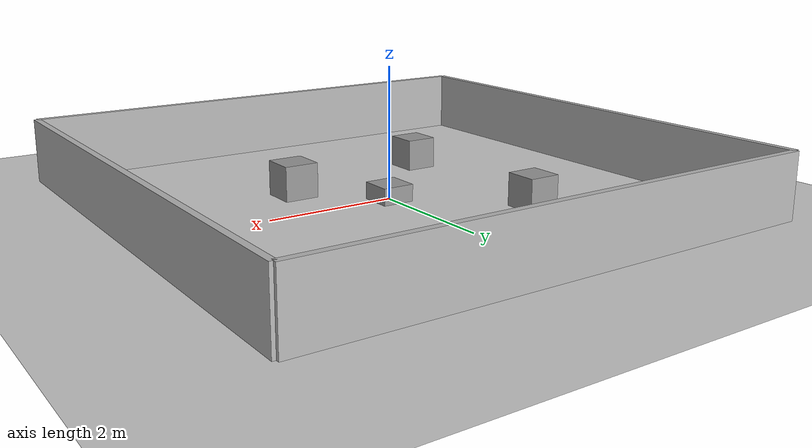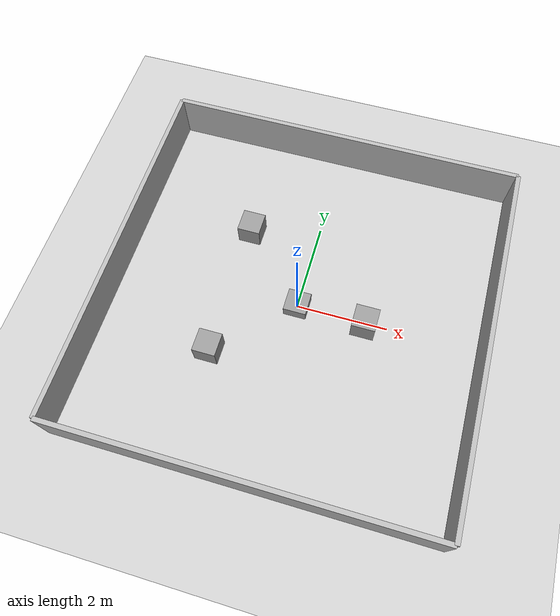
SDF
<sdf version="1.7">
 <world name="my_world">
  <physics name="1ms" type="ignored">
   <max_step_size>0.001</max_step_size>
   <real_time_factor>1.0</real_time_factor>
  </physics>
  <plugin filename="gz-sim-physics-system" name="gz::sim::systems::Physics"/>
  <plugin filename="gz-sim-user-commands-system" name="gz::sim::systems::UserCommands"/>
  <plugin filename="gz-sim-scene-broadcaster-system" name="gz::sim::systems::SceneBroadcaster"/>
  <plugin filename="gz-sim-imu-system" name="gz::sim::systems::Imu"/>
  <plugin filename="gz-sim-sensors-system" name="gz::sim::systems::Sensors">
   <render_engine>ogre2</render_engine>
  </plugin>
  <light name="sun" type="directional">
   <pose>0 0 10 0 -0 0</pose>
   <diffuse>0.8 0.8 0.8 1</diffuse>
   <specular>0.2 0.2 0.2 1</specular>
   <attenuation>
    <range>1000</range>
    <constant>0.9</constant>
    <linear>0.01</linear>
    <quadratic>0.001</quadratic>
   </attenuation>
   <direction>-0.5 0.1 -0.9</direction>
   <spot><inner_angle>0</inner_angle><outer_angle>0</outer_angle><falloff>0</falloff></spot>
  </light>
  <model name="ground_plane">
   <static>1</static>
   <link name="link">
    <collision name="collision">
     <geometry><plane><normal>0 0 1</normal><size>100 100</size></plane></geometry>
     <surface><friction><ode><mu>100</mu><mu2>50</mu2></ode></friction></surface>
    </collision>
    <visual name="visual">
     <cast_shadows>0</cast_shadows>
     <geometry><plane><normal>0 0 1</normal><size>100 100</size></plane></geometry>
     <material>
      <script><uri>file://media/materials/scripts/gazebo.material</uri><name>Gazebo/Grey</name></script>
     </material>
    </visual>
   </link>
  </model>
  <gravity>0 0 -9.8</gravity>
  <magnetic_field>6e-06 2.3e-05 -4.2e-05</magnetic_field>
  <atmosphere type="adiabatic"/>
  <physics type="ode">
   <max_step_size>0.001</max_step_size>
   <real_time_factor>1</real_time_factor>
   <real_time_update_rate>1000</real_time_update_rate>
  </physics>
  <scene><ambient>0.4 0.4 0.4 1</ambient><background>0.7 0.7 0.7 1</background><shadows>1</shadows></scene>
  <spherical_coordinates>
   <surface_model>EARTH_WGS84</surface_model>
   <latitude_deg>0</latitude_deg>
   <longitude_deg>0</longitude_deg>
   <elevation>0</elevation>
   <heading_deg>0</heading_deg>
  </spherical_coordinates>
  <model name="unit_box">
   <pose>1.51272 -0.181418 0.499995 0 1e-05 0</pose>
   <link name="link">
    <inertial>
     <mass>1</mass>
     <inertia>
      <ixx>0.166667</ixx>
      <ixy>0</ixy>
      <ixz>0</ixz>
      <iyy>0.166667</iyy>
      <iyz>0</iyz>
      <izz>0.166667</izz>
     </inertia>
    </inertial>
    <collision name="collision"><geometry><box><size>0.5 0.5 0.5</size></box></geometry></collision>
    <visual name="visual">
     <geometry><box><size>0.5 0.5 0.5</size></box></geometry>
     <material>
      <script><name>Gazebo/Grey</name><uri>file://media/materials/scripts/gazebo.material</uri></script>
     </material>
    </visual>
   </link>
  </model>
  <model name="wall_north">
   <static>1</static>
   <pose>0 4 0.5 0 0 0</pose>
   <link name="link">
    <collision name="collision"><geometry><box><size>8 0.1 1</size></box></geometry></collision>
    <visual name="visual"><geometry><box><size>8 0.1 1</size></box></geometry></visual>
   </link>
  </model>
  <model name="wall_south">
   <static>1</static>
   <pose>0 -4 0.5 0 0 0</pose>
   <link name="link">
    <collision name="collision"><geometry><box><size>8 0.1 1</size></box></geometry></collision>
    <visual name="visual"><geometry><box><size>8 0.1 1</size></box></geometry></visual>
   </link>
  </model>
  <model name="wall_east">
   <static>1</static>
   <pose>4 0 0.5 0 0 0</pose>
   <link name="link">
    <collision name="collision"><geometry><box><size>0.1 8 1</size></box></geometry></collision>
    <visual name="visual"><geometry><box><size>0.1 8 1</size></box></geometry></visual>
   </link>
  </model>
  <model name="wall_west">
   <static>1</static>
   <pose>-4 0 0.5 0 0 0</pose>
   <link name="link">
    <collision name="collision"><geometry><box><size>0.1 8 1</size></box></geometry></collision>
    <visual name="visual"><geometry><box><size>0.1 8 1</size></box></geometry></visual>
   </link>
  </model>
  <model name="unit_box_2">
   <link name="link">
    <inertial>
     <mass>1</mass>
     <inertia>
      <ixx>0.166667</ixx>
      <ixy>0</ixy>
      <ixz>0</ixz>
      <iyy>0.166667</iyy>
      <iyz>0</iyz>
      <izz>0.166667</izz>
     </inertia>
    </inertial>
    <collision name="collision"><geometry><box><size>0.5 0.5 0.5</size></box></geometry></collision>
    <visual name="visual">
     <geometry><box><size>0.5 0.5 0.5</size></box></geometry>
     <material>
      <script><name>Gazebo/Grey</name><uri>file://media/materials/scripts/gazebo.material</uri></script>
     </material>
    </visual>
   </link>
  </model>
  <model name="unit_box_3">
   <pose>-1.5 1.5 0.25 0 -0 0</pose>
   <link name="link">
    <inertial>
     <mass>1</mass>
     <inertia>
      <ixx>0.166667</ixx>
      <ixy>0</ixy>
      <ixz>0</ixz>
      <iyy>0.166667</iyy>
      <iyz>0</iyz>
      <izz>0.166667</izz>
     </inertia>
    </inertial>
    <collision name="collision"><geometry><box><size>0.5 0.5 0.5</size></box></geometry></collision>
    <visual name="visual">
     <geometry><box><size>0.5 0.5 0.5</size></box></geometry>
     <material>
      <script><name>Gazebo/Grey</name><uri>file://media/materials/scripts/gazebo.material</uri></script>
     </material>
    </visual>
   </link>
  </model>
  <model name="unit_box_4">
   <pose>-1.5 -1.5 0.25 0 -0 0</pose>
   <link name="link">
    <inertial>
     <mass>1</mass>
     <inertia>
      <ixx>0.166667</ixx>
      <ixy>0</ixy>
      <ixz>0</ixz>
      <iyy>0.166667</iyy>
      <iyz>0</iyz>
      <izz>0.166667</izz>
     </inertia>
    </inertial>
    <collision name="collision"><geometry><box><size>0.5 0.5 0.5</size></box></geometry></collision>
    <visual name="visual">
     <geometry><box><size>0.5 0.5 0.5</size></box></geometry>
     <material>
      <script><name>Gazebo/Grey</name><uri>file://media/materials/scripts/gazebo.material</uri></script>
     </material>
    </visual>
   </link>
  </model>
 </world>
</sdf>
